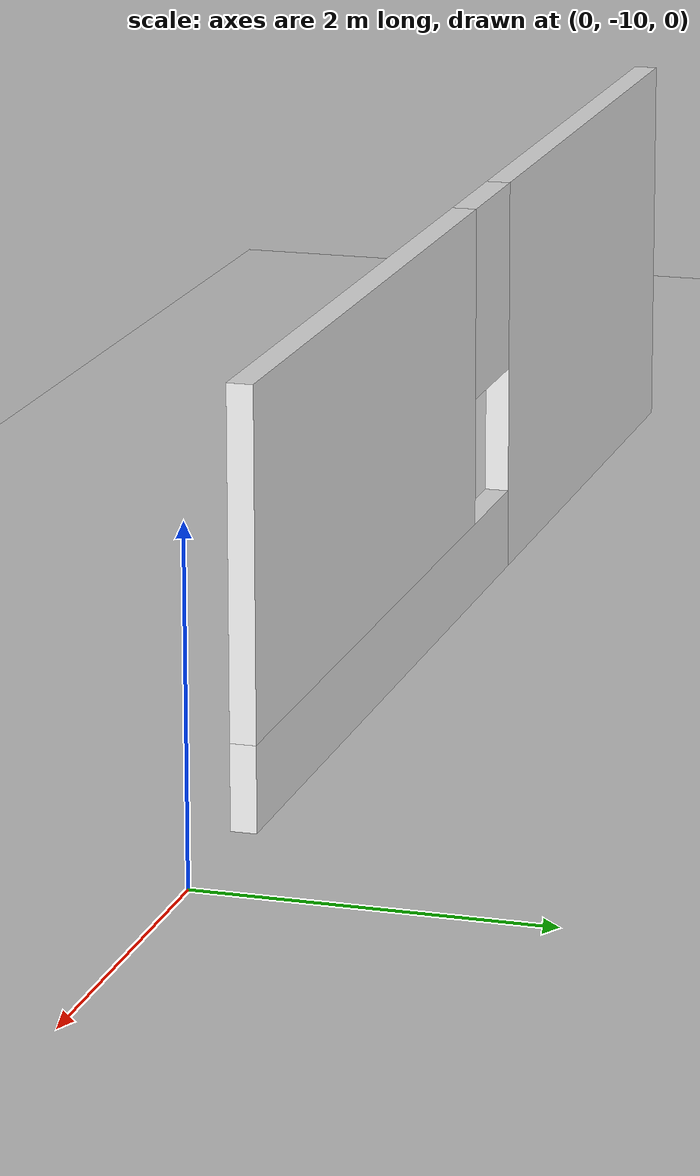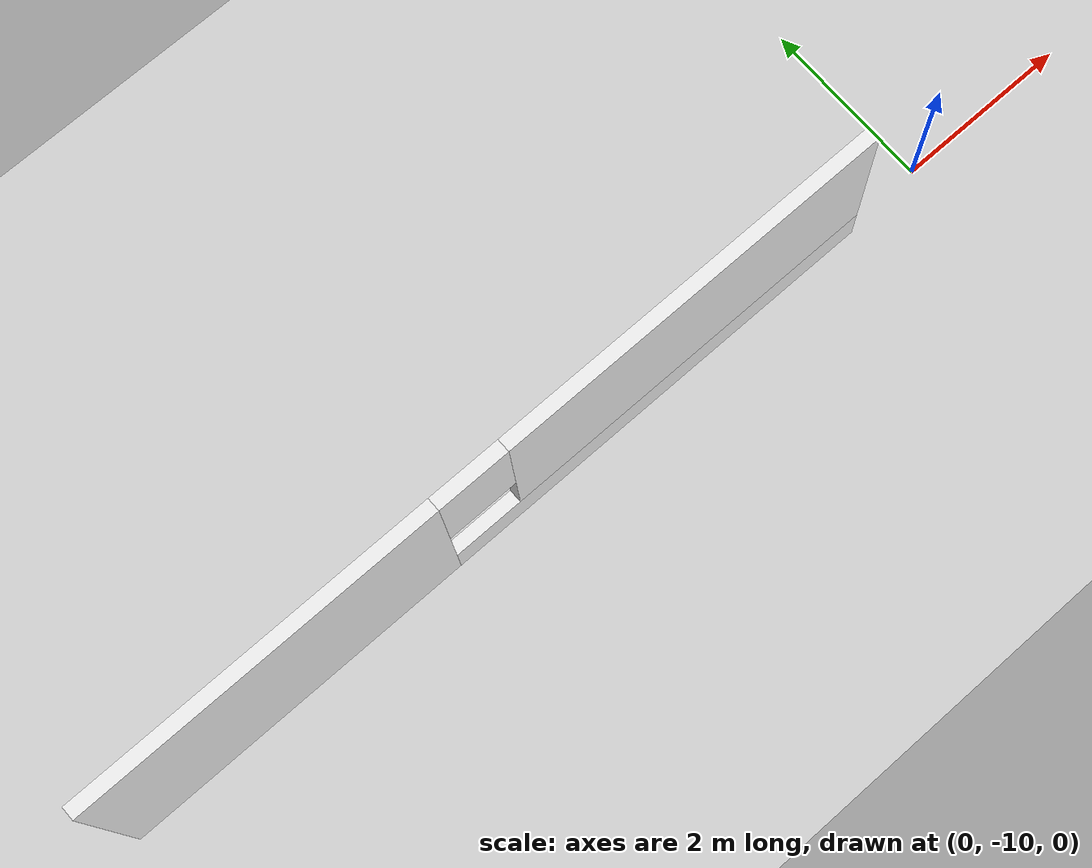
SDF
<sdf version='1.6'>
  <world name='default'>
    <!--plugin name='test' filename='libwd_plugin.so'/-->
    <scene>
      <shadows>0</shadows>
      <ambient>0.4 0.4 0.4 1</ambient>
      <background>0.7 0.7 0.7 1</background>
    </scene>
    <light name='sun' type='directional'>
      <cast_shadows>0</cast_shadows>
      <pose frame=''>0 0 5 0 -0 0</pose>
      <diffuse>0.8 0.8 0.8 1</diffuse>
      <specular>0.1 0.1 0.1 1</specular>
      <attenuation>
        <range>1000</range>
        <constant>0.9</constant>
        <linear>0.01</linear>
        <quadratic>0.001</quadratic>
      </attenuation>
      <direction>-0.5 0.5 -1</direction>
    </light>
    <physics name='default_physics' default='0' type='ode'>
      <max_step_size>0.001</max_step_size>
      <real_time_factor>1</real_time_factor>
      <real_time_update_rate>1000</real_time_update_rate>
    </physics>
    <scene>
      <ambient>0.4 0.4 0.4 1</ambient>
      <background>0.7 0.7 0.7 1</background>
      <shadows>1</shadows>
    </scene>
    <spherical_coordinates>
      <surface_model>EARTH_WGS84</surface_model>
      <latitude_deg>0</latitude_deg>
      <longitude_deg>0</longitude_deg>
      <elevation>0</elevation>
      <heading_deg>0</heading_deg>
    </spherical_coordinates>
    <model name='ground_plane'>
      <static>1</static>
      <link name='link'>
        <collision name='collision'>
          <geometry>
            <plane>
              <normal>0 0 1</normal>
              <size>100 100</size>
            </plane>
          </geometry>
          <surface>
            <friction>
              <ode>
                <mu>1</mu>
                <mu2>1</mu2>
              </ode>
              <torsional>
                <ode/>
              </torsional>
            </friction>
            <bounce/>
            <contact>
              <ode/>
            </contact>
          </surface>
          <max_contacts>10</max_contacts>
        </collision>
        <visual name='visual'>
          <cast_shadows>0</cast_shadows>
          <geometry>
            <plane>
              <normal>0 0 1</normal>
              <size>100 100</size>
            </plane>
          </geometry>
          <material>
            <script>
              <uri>file://media/materials/scripts/gazebo.material</uri>
              <name>Gazebo/Grey</name>
            </script>
          </material>
        </visual>
        <velocity_decay>
          <linear>0</linear>
          <angular>0</angular>
        </velocity_decay>
        <self_collide>0</self_collide>
        <kinematic>0</kinematic>
        <gravity>1</gravity>
      </link>
    </model>
    <gravity>0 0 -9.8</gravity>
    <magnetic_field>6e-06 2.3e-05 -4.2e-05</magnetic_field>
    <atmosphere type='adiabatic'/>
    <model name='office_env_w_complete'>
      <pose frame=''>-0.077048 -0.069525 0 0 -0 0</pose>
      <link name='Wall_10'>
        <pose frame=''>-5.46873 -9.925 0 0 -0 0</pose>
        <visual name='Wall_10_Visual_0'>
          <pose frame=''>-2.62812 0 1.25 0 -0 0</pose>
          <geometry>
            <box>
              <size>3.99376 0.15 2.5</size>
            </box>
          </geometry>
          <material>
            <script>
              <uri>model://office_env_w/materials/scripts</uri>
              <uri>model://office_env_w/materials/textures</uri>
              <name>wall_white</name>
            </script>
          </material>
          <meta>
            <layer>0</layer>
          </meta>
        </visual>
        <collision name='Wall_10_Collision_0'>
          <geometry>
            <box>
              <size>3.99376 0.15 2.5</size>
            </box>
          </geometry>
          <pose frame=''>-2.62812 0 1.25 0 -0 0</pose>
          <max_contacts>10</max_contacts>
          <surface>
            <contact>
              <ode/>
            </contact>
            <bounce/>
            <friction>
              <torsional>
                <ode/>
              </torsional>
              <ode/>
            </friction>
          </surface>
        </collision>
        <visual name='Wall_10_Visual_1'>
          <pose frame=''>1.99688 0 0.25 0 -0 0</pose>
          <geometry>
            <box>
              <size>5.25624 0.15 0.5</size>
            </box>
          </geometry>
          <material>
            <script>
              <uri>model://office_env_w/materials/scripts</uri>
              <uri>model://office_env_w/materials/textures</uri>
              <name>wall_white</name>
            </script>
          </material>
          <meta>
            <layer>0</layer>
          </meta>
        </visual>
        <collision name='Wall_10_Collision_1'>
          <geometry>
            <box>
              <size>5.25624 0.15 0.5</size>
            </box>
          </geometry>
          <pose frame=''>1.99688 0 0.25 0 -0 0</pose>
          <max_contacts>10</max_contacts>
          <surface>
            <contact>
              <ode/>
            </contact>
            <bounce/>
            <friction>
              <torsional>
                <ode/>
              </torsional>
              <ode/>
            </friction>
          </surface>
        </collision>
        <visual name='Wall_10_Visual_2'>
          <pose frame=''>2.39688 0 1.5 0 -0 0</pose>
          <geometry>
            <box>
              <size>4.45624 0.15 2</size>
            </box>
          </geometry>
          <material>
            <script>
              <uri>model://office_env_w/materials/scripts</uri>
              <uri>model://office_env_w/materials/textures</uri>
              <name>wall_white</name>
            </script>
          </material>
          <meta>
            <layer>0</layer>
          </meta>
        </visual>
        <collision name='Wall_10_Collision_2'>
          <geometry>
            <box>
              <size>4.45624 0.15 2</size>
            </box>
          </geometry>
          <pose frame=''>2.39688 0 1.5 0 -0 0</pose>
          <max_contacts>10</max_contacts>
          <surface>
            <contact>
              <ode/>
            </contact>
            <bounce/>
            <friction>
              <torsional>
                <ode/>
              </torsional>
              <ode/>
            </friction>
          </surface>
        </collision>
        <visual name='Wall_10_Visual_3'>
          <pose frame=''>-0.231239 0 1.9 0 -0 0</pose>
          <geometry>
            <box>
              <size>0.8 0.15 1.2</size>
            </box>
          </geometry>
          <material>
            <script>
              <uri>model://office_env_w/materials/scripts</uri>
              <uri>model://office_env_w/materials/textures</uri>
              <name>wall_white</name>
            </script>
          </material>
          <meta>
            <layer>0</layer>
          </meta>
        </visual>
        <collision name='Wall_10_Collision_3'>
          <geometry>
            <box>
              <size>0.8 0.15 1.2</size>
            </box>
          </geometry>
          <pose frame=''>-0.231239 0 1.9 0 -0 0</pose>
          <max_contacts>10</max_contacts>
          <surface>
            <contact>
              <ode/>
            </contact>
            <bounce/>
            <friction>
              <torsional>
                <ode/>
              </torsional>
              <ode/>
            </friction>
          </surface>
        </collision>
        <self_collide>0</self_collide>
        <kinematic>0</kinematic>
      </link>
      <static>1</static>
      <allow_auto_disable>1</allow_auto_disable>
</model>
</world>
</sdf>
